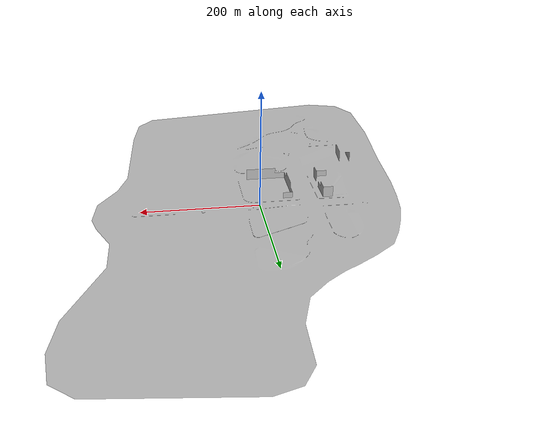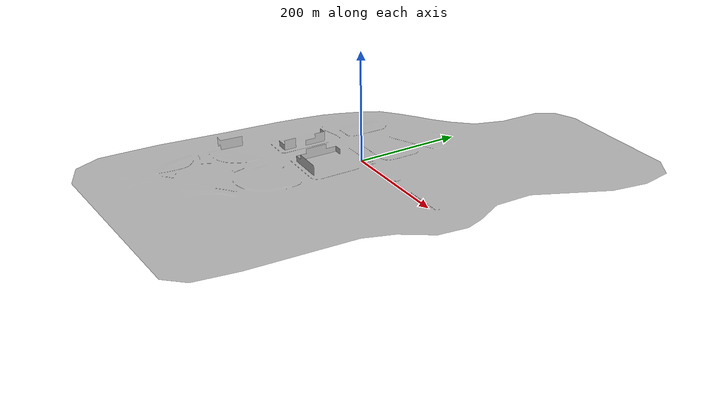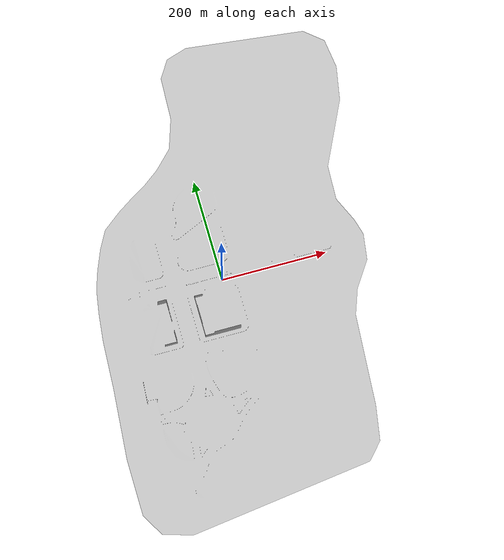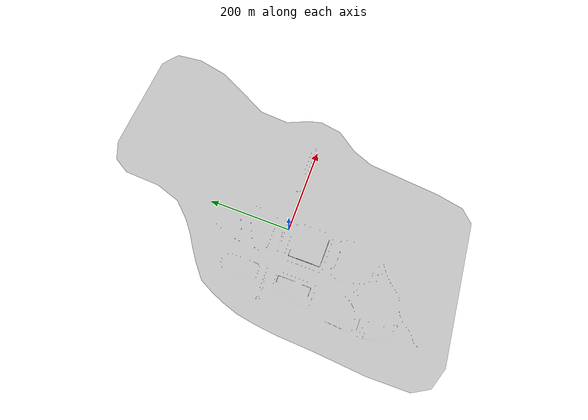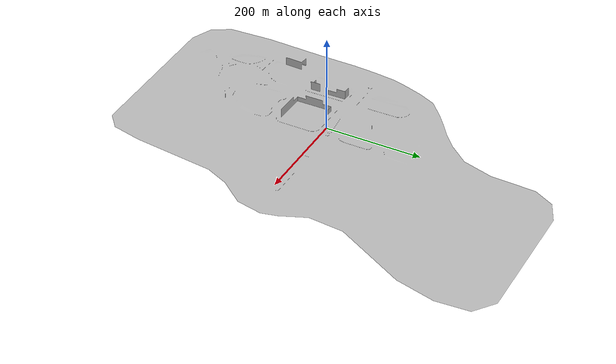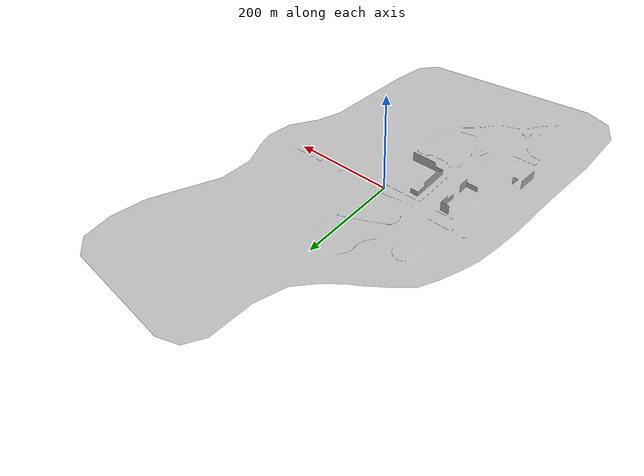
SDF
<sdf version="1.6">
 <world name="default">
  <model name="mycity">
   <static>1</static>
   <link name="link">
    <collision name="collision">
     <geometry><mesh><scale>0.254 0.254 0.254</scale><uri>model://mycity/meshes/mycity.dae</uri></mesh></geometry>
    </collision>
    <visual name="visual">
     <geometry><mesh><scale>0.254 0.254 0.254</scale><uri>model://mycity/meshes/mycity.dae</uri></mesh></geometry>
    </visual>
   </link>
   <pose>2.75409 8.89594 0 0 -0 0</pose>
  </model>
 </world>
</sdf>
